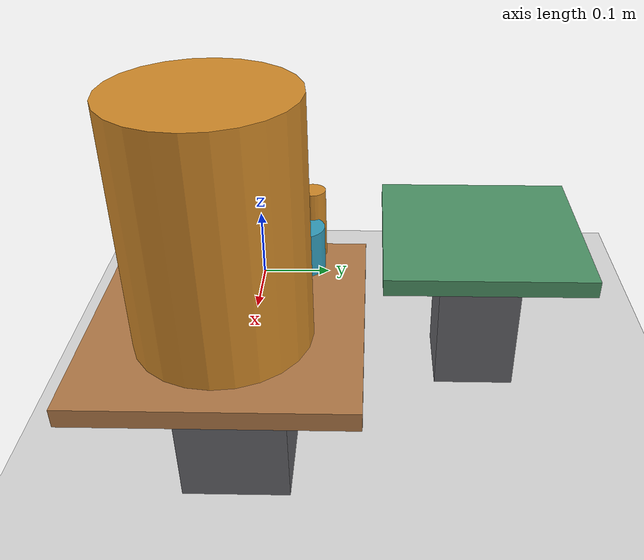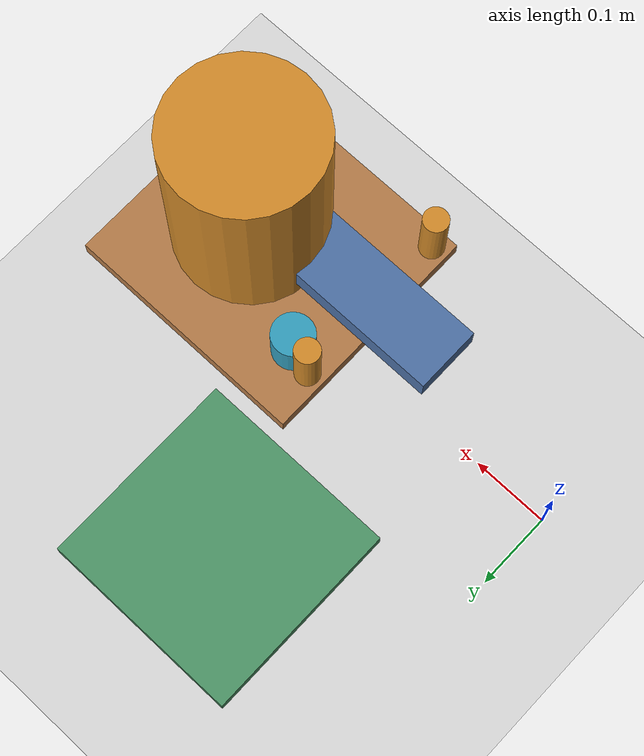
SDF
<?xml version="1.0" ?>
<sdf version="1.10">
  <world name="manipulation_task">

    <physics name="1ms" type="ignored">
      <max_step_size>0.001</max_step_size>
      <real_time_factor>1.0</real_time_factor>
    </physics>

    <plugin filename="gz-sim-physics-system"
            name="gz::sim::systems::Physics"/>
    <plugin filename="gz-sim-user-commands-system"
            name="gz::sim::systems::UserCommands"/>
    <plugin filename="gz-sim-scene-broadcaster-system"
            name="gz::sim::systems::SceneBroadcaster"/>
    <plugin filename="gz-sim-contact-system"
            name="gz::sim::systems::Contact"/>
    <plugin filename="gz-sim-sensors-system"
            name="gz::sim::systems::Sensors">
      <render_engine>ogre2</render_engine>
    </plugin>

    <gravity>0 0 -9.8</gravity>

    <scene>
      <ambient>0.5 0.5 0.5 1</ambient>
      <background>0.82 0.87 0.92 1</background>
      <grid>true</grid>
      <shadows>true</shadows>
    </scene>

    <light type="directional" name="sun">
      <cast_shadows>true</cast_shadows>
      <pose>0 0 10 0 0 0</pose>
      <diffuse>0.9 0.9 0.9 1</diffuse>
      <specular>0.25 0.25 0.25 1</specular>
      <attenuation>
        <range>1000</range>
        <constant>0.9</constant>
        <linear>0.01</linear>
        <quadratic>0.001</quadratic>
      </attenuation>
      <direction>-0.5 0.3 -0.9</direction>
    </light>

    <model name="ground_plane">
      <static>true</static>
      <link name="link">
        <collision name="collision">
          <geometry><plane><normal>0 0 1</normal><size>50 50</size></plane></geometry>
          <surface><friction><ode><mu>1.0</mu><mu2>1.0</mu2></ode></friction></surface>
        </collision>
        <visual name="visual">
          <geometry><plane><normal>0 0 1</normal><size>50 50</size></plane></geometry>
          <material>
            <ambient>0.75 0.75 0.75 1</ambient>
            <diffuse>0.85 0.85 0.85 1</diffuse>
          </material>
        </visual>
      </link>
    </model>

    <model name="starting_base">
      <static>true</static>
      <pose>0.41 0.02 0 0 0 0</pose>
      <link name="link">
        <collision name="top_collision">
          <pose>0 0 0.19 0 0 0</pose>
          <geometry><box><size>0.30 0.28 0.02</size></box></geometry>
        </collision>
        <visual name="top_visual">
          <pose>0 0 0.19 0 0 0</pose>
          <geometry><box><size>0.30 0.28 0.02</size></box></geometry>
          <material>
            <ambient>0.55 0.38 0.22 1</ambient>
            <diffuse>0.70 0.48 0.28 1</diffuse>
          </material>
        </visual>
        <collision name="pedestal_collision">
          <pose>0 0 0.09 0 0 0</pose>
          <geometry><box><size>0.12 0.12 0.18</size></box></geometry>
        </collision>
        <visual name="pedestal_visual">
          <pose>0 0 0.09 0 0 0</pose>
          <geometry><box><size>0.12 0.12 0.18</size></box></geometry>
          <material>
            <ambient>0.30 0.30 0.32 1</ambient>
            <diffuse>0.40 0.40 0.42 1</diffuse>
          </material>
        </visual>
      </link>
    </model>

    <!-- ================= DESTINATION BASE ================= -->
    <model name="destination_base">
      <static>true</static>
      <pose>0.22 0.30 0 0 0 0</pose>
      <link name="link">
        <collision name="top_collision">
          <pose>0 0 0.19 0 0 0</pose>
          <geometry><box><size>0.24 0.24 0.02</size></box></geometry>
        </collision>
        <visual name="top_visual">
          <pose>0 0 0.19 0 0 0</pose>
          <geometry><box><size>0.24 0.24 0.02</size></box></geometry>
          <material>
            <ambient>0.22 0.42 0.30 1</ambient>
            <diffuse>0.30 0.58 0.40 1</diffuse>
          </material>
        </visual>
        <collision name="pedestal_collision">
          <pose>0 0 0.09 0 0 0</pose>
          <geometry><box><size>0.10 0.10 0.18</size></box></geometry>
        </collision>
        <visual name="pedestal_visual">
          <pose>0 0 0.09 0 0 0</pose>
          <geometry><box><size>0.10 0.10 0.18</size></box></geometry>
          <material>
            <ambient>0.30 0.30 0.32 1</ambient>
            <diffuse>0.40 0.40 0.42 1</diffuse>
          </material>
        </visual>
      </link>
    </model>

    <model name="object_min">
      <pose>0.31 0.09 0.225 0 0 0</pose>
      <link name="link">
        <inertial>
          <mass>0.08</mass>
          <inertia>
            <ixx>0.0000292</ixx><ixy>0</ixy><ixz>0</ixz>
            <iyy>0.0000292</iyy><iyz>0</iyz>
            <izz>0.0000250</izz>
          </inertia>
        </inertial>
        <collision name="collision">
          <geometry><cylinder><radius>0.025</radius><length>0.050</length></cylinder></geometry>
          <surface>
            <friction><ode><mu>1.6</mu><mu2>1.6</mu2></ode></friction>
            <contact><ode><kp>1000000</kp><kd>100</kd></ode></contact>
          </surface>
        </collision>
        <visual name="visual">
          <geometry><cylinder><radius>0.025</radius><length>0.050</length></cylinder></geometry>
          <material>
            <ambient>0.15 0.45 0.55 1</ambient>
            <diffuse>0.20 0.62 0.74 1</diffuse>
          </material>
        </visual>
      </link>
    </model>

    <model name="object_max">
      <pose>0.44 0.02 0.325 0 0 0</pose>
      <link name="link">
        <inertial>
          <mass>0.50</mass>
          <inertia>
            <ixx>0.003617</ixx><ixy>0</ixy><ixz>0</ixz>
            <iyy>0.003617</iyy><iyz>0</iyz>
            <izz>0.002025</izz>
          </inertia>
        </inertial>
        <collision name="collision">
          <geometry><cylinder><radius>0.090</radius><length>0.250</length></cylinder></geometry>
          <surface>
            <friction><ode><mu>1.6</mu><mu2>1.6</mu2></ode></friction>
          </surface>
        </collision>
        <visual name="visual">
          <geometry><cylinder><radius>0.090</radius><length>0.250</length></cylinder></geometry>
          <material>
            <ambient>0.55 0.35 0.10 1</ambient>
            <diffuse>0.82 0.54 0.16 1</diffuse>
          </material>
        </visual>
      </link>
    </model>

    <model name="object_bimanual">
      <pose>0.28 0 0.24 0 0 0</pose>
      <link name="link">
        <inertial>
          <mass>0.50</mass>
          <inertia>
            <ixx>0.001185</ixx><ixy>0</ixy><ixz>0</ixz>
            <iyy>0.001744</iyy><iyz>0</iyz>
            <izz>0.002773</izz>
          </inertia>
        </inertial>

        <!-- Tray body connecting the two handles, 22 cm x 8 cm x 3 cm -->
        <collision name="body_collision">
          <geometry><box><size>0.22 0.08 0.03</size></box></geometry>
        </collision>
        <visual name="body_visual">
          <geometry><box><size>0.22 0.08 0.03</size></box></geometry>
          <material>
            <ambient>0.20 0.30 0.45 1</ambient>
            <diffuse>0.30 0.44 0.64 1</diffuse>
          </material>
        </visual>

        <!-- Left handle post: 3 cm dia, 8 cm tall, centred on the grasp point -->
        <collision name="handle_left_collision">
          <pose>0 0.10 0 0 0 0</pose>
          <geometry><cylinder><radius>0.015</radius><length>0.08</length></cylinder></geometry>
          <surface>
            <friction><ode><mu>1.6</mu><mu2>1.6</mu2></ode></friction>
          </surface>
        </collision>
        <visual name="handle_left_visual">
          <pose>0 0.10 0 0 0 0</pose>
          <geometry><cylinder><radius>0.015</radius><length>0.08</length></cylinder></geometry>
          <material>
            <ambient>0.55 0.35 0.10 1</ambient>
            <diffuse>0.82 0.54 0.16 1</diffuse>
          </material>
        </visual>

        <!-- Right handle post: mirror of the left -->
        <collision name="handle_right_collision">
          <pose>0 -0.10 0 0 0 0</pose>
          <geometry><cylinder><radius>0.015</radius><length>0.08</length></cylinder></geometry>
          <surface>
            <friction><ode><mu>1.6</mu><mu2>1.6</mu2></ode></friction>
          </surface>
        </collision>
        <visual name="handle_right_visual">
          <pose>0 -0.10 0 0 0 0</pose>
          <geometry><cylinder><radius>0.015</radius><length>0.08</length></cylinder></geometry>
          <material>
            <ambient>0.55 0.35 0.10 1</ambient>
            <diffuse>0.82 0.54 0.16 1</diffuse>
          </material>
        </visual>
      </link>
    </model>

  </world>
</sdf>
